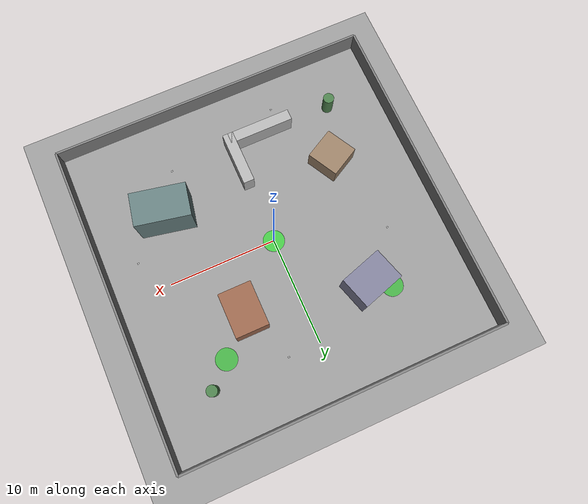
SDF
<?xml version="1.0" ?>
<sdf version="1.6">
  <world name="rescue_arena">

    <!-- Physics -->
    <physics type="ode">
      <max_step_size>0.004</max_step_size>
      <real_time_factor>1.0</real_time_factor>
      <real_time_update_rate>250</real_time_update_rate>
    </physics>

    <!-- Scene -->
    <scene>
      <ambient>0.4 0.4 0.4 1</ambient>
      <background>0.7 0.7 0.7 1</background>
      <shadows>true</shadows>
    </scene>

    <!-- Sun -->
    <light type="directional" name="sun">
      <cast_shadows>true</cast_shadows>
      <pose>0 0 10 0 0 0</pose>
      <diffuse>0.8 0.8 0.8 1</diffuse>
      <specular>0.2 0.2 0.2 1</specular>
      <direction>-0.5 0.1 -0.9</direction>
    </light>

    <!-- Ground Plane -->
    <model name="ground_plane">
      <static>true</static>
      <link name="link">
        <collision name="collision">
          <geometry>
            <plane>
              <normal>0 0 1</normal>
              <size>50 50</size>
            </plane>
          </geometry>
          <surface>
            <friction>
              <ode>
                <mu>100</mu>
                <mu2>50</mu2>
              </ode>
            </friction>
          </surface>
        </collision>
        <visual name="visual">
          <geometry>
            <plane>
              <normal>0 0 1</normal>
              <size>50 50</size>
            </plane>
          </geometry>
          <material>
            <ambient>0.3 0.3 0.3 1</ambient>
            <diffuse>0.6 0.6 0.6 1</diffuse>
          </material>
        </visual>
      </link>
    </model>

    <!-- ============ WALLS / OBSTACLES ============ -->

    <!-- Outer boundary walls -->
    <model name="wall_north">
      <static>true</static>
      <pose>0 15 1 0 0 0</pose>
      <link name="link">
        <collision name="collision">
          <geometry><box><size>30 0.2 2</size></box></geometry>
        </collision>
        <visual name="visual">
          <geometry><box><size>30 0.2 2</size></box></geometry>
          <material><ambient>0.5 0.5 0.5 1</ambient></material>
        </visual>
      </link>
    </model>

    <model name="wall_south">
      <static>true</static>
      <pose>0 -15 1 0 0 0</pose>
      <link name="link">
        <collision name="collision">
          <geometry><box><size>30 0.2 2</size></box></geometry>
        </collision>
        <visual name="visual">
          <geometry><box><size>30 0.2 2</size></box></geometry>
          <material><ambient>0.5 0.5 0.5 1</ambient></material>
        </visual>
      </link>
    </model>

    <model name="wall_east">
      <static>true</static>
      <pose>15 0 1 0 0 1.5708</pose>
      <link name="link">
        <collision name="collision">
          <geometry><box><size>30 0.2 2</size></box></geometry>
        </collision>
        <visual name="visual">
          <geometry><box><size>30 0.2 2</size></box></geometry>
          <material><ambient>0.5 0.5 0.5 1</ambient></material>
        </visual>
      </link>
    </model>

    <model name="wall_west">
      <static>true</static>
      <pose>-15 0 1 0 0 1.5708</pose>
      <link name="link">
        <collision name="collision">
          <geometry><box><size>30 0.2 2</size></box></geometry>
        </collision>
        <visual name="visual">
          <geometry><box><size>30 0.2 2</size></box></geometry>
          <material><ambient>0.5 0.5 0.5 1</ambient></material>
        </visual>
      </link>
    </model>

    <!-- Interior obstacles - buildings -->
    <model name="building_1">
      <static>true</static>
      <pose>5 5 1.5 0 0 0</pose>
      <link name="link">
        <collision name="collision">
          <geometry><box><size>3 4 3</size></box></geometry>
        </collision>
        <visual name="visual">
          <geometry><box><size>3 4 3</size></box></geometry>
          <material><ambient>0.6 0.4 0.3 1</ambient></material>
        </visual>
      </link>
    </model>

    <model name="building_2">
      <static>true</static>
      <pose>-6 7 1.5 0 0 0.3</pose>
      <link name="link">
        <collision name="collision">
          <geometry><box><size>4 3 3</size></box></geometry>
        </collision>
        <visual name="visual">
          <geometry><box><size>4 3 3</size></box></geometry>
          <material><ambient>0.5 0.5 0.6 1</ambient></material>
        </visual>
      </link>
    </model>

    <model name="building_3">
      <static>true</static>
      <pose>8 -6 2 0 0 -0.2</pose>
      <link name="link">
        <collision name="collision">
          <geometry><box><size>5 3 4</size></box></geometry>
        </collision>
        <visual name="visual">
          <geometry><box><size>5 3 4</size></box></geometry>
          <material><ambient>0.4 0.5 0.5 1</ambient></material>
        </visual>
      </link>
    </model>

    <model name="building_4">
      <static>true</static>
      <pose>-8 -5 1 0 0 0.5</pose>
      <link name="link">
        <collision name="collision">
          <geometry><box><size>3 3 2</size></box></geometry>
        </collision>
        <visual name="visual">
          <geometry><box><size>3 3 2</size></box></geometry>
          <material><ambient>0.6 0.5 0.4 1</ambient></material>
        </visual>
      </link>
    </model>

    <!-- L-shaped obstacle -->
    <model name="l_obstacle_1">
      <static>true</static>
      <pose>-3 -10 1 0 0 0</pose>
      <link name="link">
        <collision name="collision">
          <geometry><box><size>6 1 2</size></box></geometry>
        </collision>
        <visual name="visual">
          <geometry><box><size>6 1 2</size></box></geometry>
          <material><ambient>0.7 0.7 0.7 1</ambient></material>
        </visual>
      </link>
    </model>

    <model name="l_obstacle_2">
      <static>true</static>
      <pose>0 -8 1 0 0 0</pose>
      <link name="link">
        <collision name="collision">
          <geometry><box><size>1 5 2</size></box></geometry>
        </collision>
        <visual name="visual">
          <geometry><box><size>1 5 2</size></box></geometry>
          <material><ambient>0.7 0.7 0.7 1</ambient></material>
        </visual>
      </link>
    </model>

    <!-- Cylindrical obstacles (trees/poles) -->
    <model name="cylinder_1">
      <static>true</static>
      <pose>10 10 1 0 0 0</pose>
      <link name="link">
        <collision name="collision">
          <geometry><cylinder><radius>0.5</radius><length>2</length></cylinder></geometry>
        </collision>
        <visual name="visual">
          <geometry><cylinder><radius>0.5</radius><length>2</length></cylinder></geometry>
          <material><ambient>0.3 0.5 0.3 1</ambient></material>
        </visual>
      </link>
    </model>

    <model name="cylinder_2">
      <static>true</static>
      <pose>-10 -10 1 0 0 0</pose>
      <link name="link">
        <collision name="collision">
          <geometry><cylinder><radius>0.5</radius><length>2</length></cylinder></geometry>
        </collision>
        <visual name="visual">
          <geometry><cylinder><radius>0.5</radius><length>2</length></cylinder></geometry>
          <material><ambient>0.3 0.5 0.3 1</ambient></material>
        </visual>
      </link>
    </model>

    <!-- ============ ARUCO MARKERS (Victims) ============ -->
    <!-- Marker ID 1 -->
    <include>
      <uri>model://aruco_marker</uri>
      <name>victim_1</name>
      <pose>3 10 0.01 0 0 0</pose>
    </include>

    <!-- Marker ID 2 -->
    <include>
      <uri>model://aruco_marker</uri>
      <name>victim_2</name>
      <pose>-10 3 0.01 0 0 0</pose>
    </include>

    <!-- Marker ID 3 -->
    <include>
      <uri>model://aruco_marker</uri>
      <name>victim_3</name>
      <pose>12 -3 0.01 0 0 0</pose>
    </include>

    <!-- Marker ID 4 -->
    <include>
      <uri>model://aruco_marker</uri>
      <name>victim_4</name>
      <pose>-5 -12 0.01 0 0 0</pose>
    </include>

    <!-- Marker ID 5 -->
    <include>
      <uri>model://aruco_marker</uri>
      <name>victim_5</name>
      <pose>6 -10 0.01 0 0 0</pose>
    </include>

    <!-- ============ SAFETY POINT MARKERS ============ -->
    <!-- Visual markers for safety/extraction points -->

    <model name="safety_point_alpha">
      <static>true</static>
      <pose>0 0 0.01 0 0 0</pose>
      <link name="link">
        <visual name="visual">
          <geometry><cylinder><radius>1.0</radius><length>0.02</length></cylinder></geometry>
          <material>
            <ambient>0 1 0 0.5</ambient>
            <diffuse>0 1 0 0.5</diffuse>
          </material>
        </visual>
      </link>
    </model>

    <model name="safety_point_bravo">
      <static>true</static>
      <pose>8 8 0.01 0 0 0</pose>
      <link name="link">
        <visual name="visual">
          <geometry><cylinder><radius>1.0</radius><length>0.02</length></cylinder></geometry>
          <material>
            <ambient>0 0.8 0 0.5</ambient>
            <diffuse>0 0.8 0 0.5</diffuse>
          </material>
        </visual>
      </link>
    </model>

    <model name="safety_point_charlie">
      <static>true</static>
      <pose>-8 8 0.01 0 0 0</pose>
      <link name="link">
        <visual name="visual">
          <geometry><cylinder><radius>1.0</radius><length>0.02</length></cylinder></geometry>
          <material>
            <ambient>0 0.8 0 0.5</ambient>
            <diffuse>0 0.8 0 0.5</diffuse>
          </material>
        </visual>
      </link>
    </model>

  </world>
</sdf>

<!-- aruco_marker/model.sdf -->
<sdf version="1.6">
  <model name="aruco_marker">
    <static>true</static>
    <link name="link">
      <visual name="visual">
        <geometry>
          <box>
            <size>0.15 0.15 0.001</size>
          </box>
        </geometry>
        <material>
          <script>
            <uri>model://aruco_marker/materials/scripts</uri>
            <uri>model://aruco_marker/materials/textures</uri>
            <n>ArUcoMarker/Marker</n>
          </script>
        </material>
      </visual>
    </link>
  </model>
</sdf>
